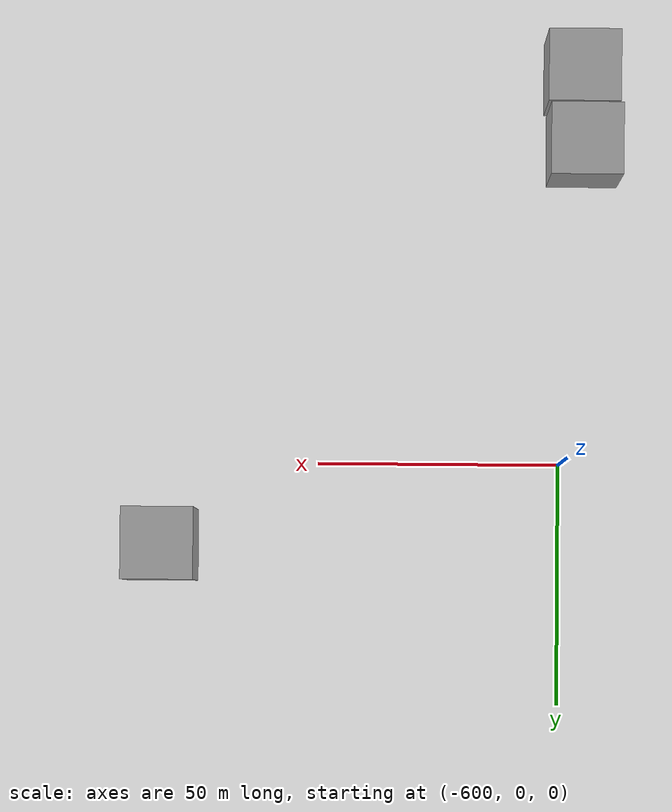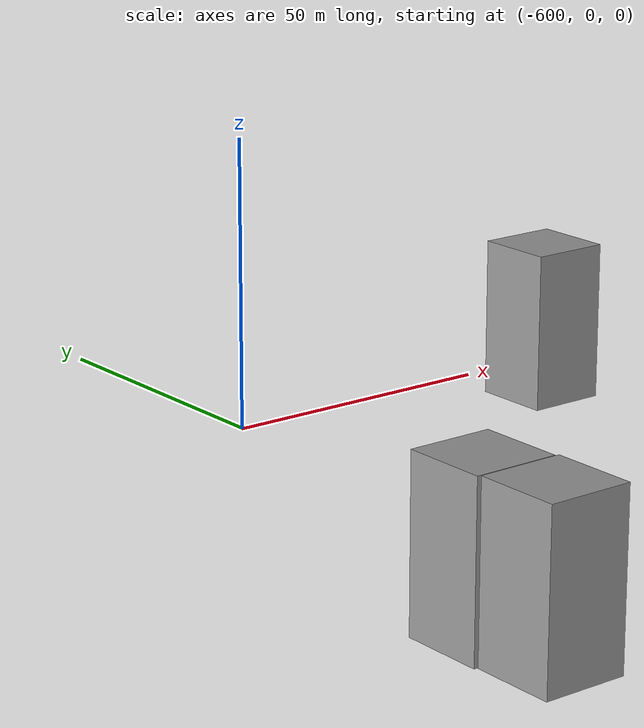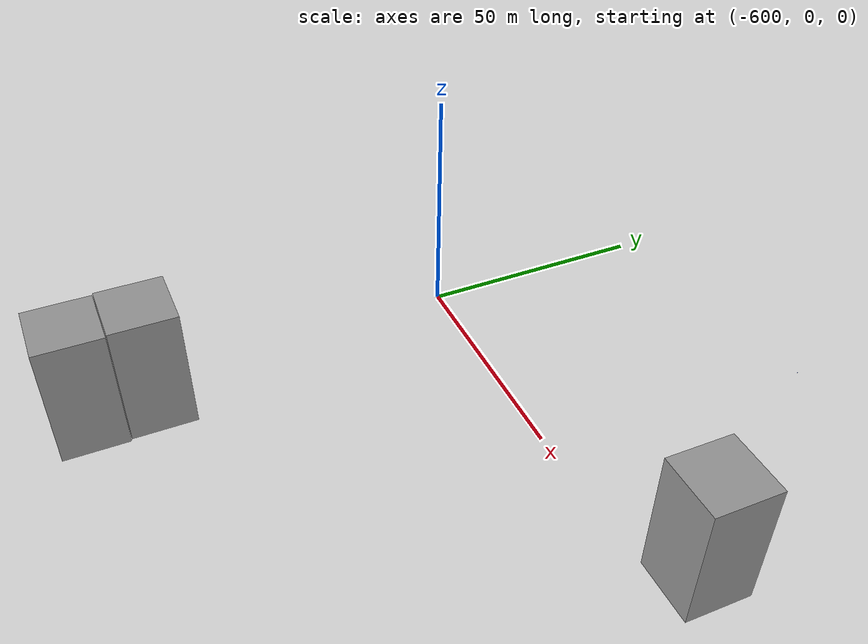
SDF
<sdf version="1.7">
 <world name="usv_world">
  <model name="blue_projectile">
   <link name="link">
    <inertial>
     <mass>0.04</mass>
     <inertia><ixx>2.166e-05</ixx><ixy>0</ixy><ixz>0</ixz><iyy>2166</iyy><iyz>0</iyz><izz>2166</izz></inertia>
    </inertial>
    <collision name="collision"><geometry><sphere><radius>0.0285</radius></sphere></geometry></collision>
    <visual name="visual">
     <geometry><sphere><radius>0.0285</radius></sphere></geometry>
     <material>
      <script>
       <uri>model://blue_projectile/materials/scripts/blue_projectile.material</uri>
       <name>blue_projectile/Blue</name>
      </script>
     </material>
    </visual>
   </link>
   <plugin name="BuoyancyPlugin" filename="libbuoyancy_gazebo_plugin.so">
    <wave_model>ocean_waves</wave_model>
    <fluid_density>1000</fluid_density>
    <fluid_level>0.0</fluid_level>
    <linear_drag>25.0</linear_drag>
    <angular_drag>2.0</angular_drag>
    <buoyancy name="buoyancy_sphere">
     <link_name>link</link_name>
     <pose>0 0 -0.02 0 0 0</pose>
     <geometry><sphere><radius>0.0285</radius></sphere></geometry>
    </buoyancy>
   </plugin>
   <pose>-545 60 -0.010152 0 -0 0</pose>
  </model>
  <model name="box_obstacle_clone_4_clone_12">
   <link name="link">
    <inertial>
     <mass>1</mass>
     <inertia>
      <ixx>0.166667</ixx>
      <ixy>0</ixy>
      <ixz>0</ixz>
      <iyy>0.166667</iyy>
      <iyz>0</iyz>
      <izz>0.166667</izz>
     </inertia>
    </inertial>
    <gravity>0</gravity>
    <visual name="visual">
     <geometry><box><size>15 15 30</size></box></geometry>
     <material>
      <script><name>Gazebo/Grey</name><uri>file://media/materials/scripts/gazebo.material</uri></script>
      <shader type="pixel"><normal_map>__default__</normal_map></shader>
      <ambient>0.3 0.3 0.3 1</ambient>
      <diffuse>0.7 0.7 0.7 1</diffuse>
      <specular>0.01 0.01 0.01 1</specular>
      <emissive>0 0 0 1</emissive>
     </material>
    </visual>
    <collision name="collision">
     <geometry><box><size>15 15 30</size></box></geometry>
     <surface>
      <friction>
       <ode><mu>1</mu><mu2>1</mu2><fdir1>0 0 0</fdir1><slip1>0</slip1><slip2>0</slip2></ode>
       <torsional>
        <coefficient>1</coefficient>
        <patch_radius>0</patch_radius>
        <surface_radius>0</surface_radius>
        <use_patch_radius>1</use_patch_radius>
        <ode><slip>0</slip></ode>
       </torsional>
      </friction>
      <bounce><restitution_coefficient>0</restitution_coefficient><threshold>1e+06</threshold></bounce>
      <contact>
       <collide_without_contact>0</collide_without_contact>
       <collide_without_contact_bitmask>1</collide_without_contact_bitmask>
       <collide_bitmask>1</collide_bitmask>
       <ode>
        <soft_cfm>0</soft_cfm>
        <soft_erp>0.2</soft_erp>
        <kp>1e+13</kp>
        <kd>1</kd>
        <max_vel>0.01</max_vel>
        <min_depth>0</min_depth>
       </ode>
       <bullet>
        <split_impulse>1</split_impulse>
        <split_impulse_penetration_threshold>-0.01</split_impulse_penetration_threshold>
        <soft_cfm>0</soft_cfm>
        <soft_erp>0.2</soft_erp>
        <kp>1e+13</kp>
        <kd>1</kd>
       </bullet>
      </contact>
     </surface>
    </collision>
   </link>
   <static>0</static>
   <pose>-517.038 16.9361 0.5 0 -0 0</pose>
  </model>
  <model name="box_obstacle_clone_4_clone_12_clone_18">
   <link name="link">
    <inertial>
     <mass>1</mass>
     <inertia>
      <ixx>0.166667</ixx>
      <ixy>0</ixy>
      <ixz>0</ixz>
      <iyy>0.166667</iyy>
      <iyz>0</iyz>
      <izz>0.166667</izz>
     </inertia>
    </inertial>
    <gravity>0</gravity>
    <visual name="visual">
     <geometry><box><size>15 15 30</size></box></geometry>
     <material>
      <script><name>Gazebo/Grey</name><uri>file://media/materials/scripts/gazebo.material</uri></script>
      <shader type="pixel"><normal_map>__default__</normal_map></shader>
      <ambient>0.3 0.3 0.3 1</ambient>
      <diffuse>0.7 0.7 0.7 1</diffuse>
      <specular>0.01 0.01 0.01 1</specular>
      <emissive>0 0 0 1</emissive>
     </material>
    </visual>
    <collision name="collision">
     <geometry><box><size>15 15 30</size></box></geometry>
     <surface>
      <friction>
       <ode><mu>1</mu><mu2>1</mu2><fdir1>0 0 0</fdir1><slip1>0</slip1><slip2>0</slip2></ode>
       <torsional>
        <coefficient>1</coefficient>
        <patch_radius>0</patch_radius>
        <surface_radius>0</surface_radius>
        <use_patch_radius>1</use_patch_radius>
        <ode><slip>0</slip></ode>
       </torsional>
      </friction>
      <bounce><restitution_coefficient>0</restitution_coefficient><threshold>1e+06</threshold></bounce>
      <contact>
       <collide_without_contact>0</collide_without_contact>
       <collide_without_contact_bitmask>1</collide_without_contact_bitmask>
       <collide_bitmask>1</collide_bitmask>
       <ode>
        <soft_cfm>0</soft_cfm>
        <soft_erp>0.2</soft_erp>
        <kp>1e+13</kp>
        <kd>1</kd>
        <max_vel>0.01</max_vel>
        <min_depth>0</min_depth>
       </ode>
       <bullet>
        <split_impulse>1</split_impulse>
        <split_impulse_penetration_threshold>-0.01</split_impulse_penetration_threshold>
        <soft_cfm>0</soft_cfm>
        <soft_erp>0.2</soft_erp>
        <kp>1e+13</kp>
        <kd>1</kd>
       </bullet>
      </contact>
     </surface>
    </collision>
   </link>
   <static>0</static>
   <pose>-604.631 -82.6278 0.5 0 -0 0</pose>
  </model>
  <model name="box_obstacle_clone_4_clone_12_clone_19">
   <link name="link">
    <inertial>
     <mass>1</mass>
     <inertia>
      <ixx>0.166667</ixx>
      <ixy>0</ixy>
      <ixz>0</ixz>
      <iyy>0.166667</iyy>
      <iyz>0</iyz>
      <izz>0.166667</izz>
     </inertia>
    </inertial>
    <gravity>0</gravity>
    <visual name="visual">
     <geometry><box><size>15 15 30</size></box></geometry>
     <material>
      <script><name>Gazebo/Grey</name><uri>file://media/materials/scripts/gazebo.material</uri></script>
      <shader type="pixel"><normal_map>__default__</normal_map></shader>
      <ambient>0.3 0.3 0.3 1</ambient>
      <diffuse>0.7 0.7 0.7 1</diffuse>
      <specular>0.01 0.01 0.01 1</specular>
      <emissive>0 0 0 1</emissive>
     </material>
    </visual>
    <collision name="collision">
     <geometry><box><size>15 15 30</size></box></geometry>
     <surface>
      <friction>
       <ode><mu>1</mu><mu2>1</mu2><fdir1>0 0 0</fdir1><slip1>0</slip1><slip2>0</slip2></ode>
       <torsional>
        <coefficient>1</coefficient>
        <patch_radius>0</patch_radius>
        <surface_radius>0</surface_radius>
        <use_patch_radius>1</use_patch_radius>
        <ode><slip>0</slip></ode>
       </torsional>
      </friction>
      <bounce><restitution_coefficient>0</restitution_coefficient><threshold>1e+06</threshold></bounce>
      <contact>
       <collide_without_contact>0</collide_without_contact>
       <collide_without_contact_bitmask>1</collide_without_contact_bitmask>
       <collide_bitmask>1</collide_bitmask>
       <ode>
        <soft_cfm>0</soft_cfm>
        <soft_erp>0.2</soft_erp>
        <kp>1e+13</kp>
        <kd>1</kd>
        <max_vel>0.01</max_vel>
        <min_depth>0</min_depth>
       </ode>
       <bullet>
        <split_impulse>1</split_impulse>
        <split_impulse_penetration_threshold>-0.01</split_impulse_penetration_threshold>
        <soft_cfm>0</soft_cfm>
        <soft_erp>0.2</soft_erp>
        <kp>1e+13</kp>
        <kd>1</kd>
       </bullet>
      </contact>
     </surface>
    </collision>
   </link>
   <static>0</static>
   <pose>-605.221 -67.4175 0.5 0 -0 0</pose>
  </model>
 </world>
</sdf>
